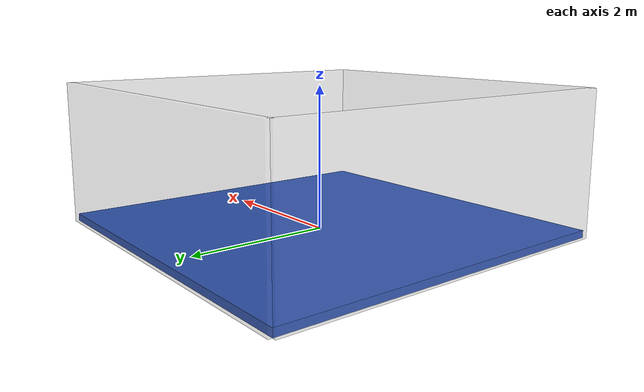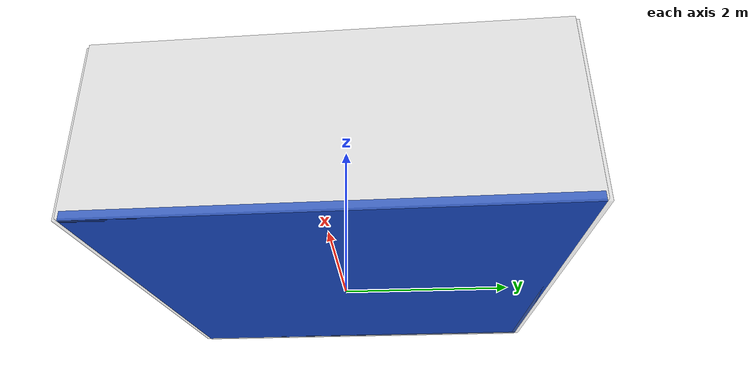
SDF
<?xml version="1.0" ?>
<sdf version="1.6">
  <model name="tanque_oco">
    <static>true</static>
    <link name="base_link">

      <collision name="piso_collision">
        <pose>0 0 0.05 0 0 0</pose>
        <geometry>
          <box><size>5.0 5.0 0.1</size></box>
        </geometry>
      </collision>
      <visual name="piso_visual">
        <pose>0 0 0.05 0 0 0</pose>
        <geometry>
          <box><size>5.0 5.0 0.1</size></box>
        </geometry>
        <material>
          <ambient>0.1 0.3 0.8 1.0</ambient>
          <diffuse>0.1 0.3 0.8 1.0</diffuse>
        </material>
      </visual>

      <collision name="parede_norte_collision">
        <pose>0 2.5 1.0 0 0 0</pose>
        <geometry>
          <box><size>5.0 0.1 2.0</size></box>
        </geometry>
      </collision>
      <visual name="parede_norte_visual">
        <pose>0 2.5 1.0 0 0 0</pose>
        <geometry>
          <box><size>5.0 0.1 2.0</size></box>
        </geometry>
        <material>
          <ambient>0.6 0.6 0.6 0.3</ambient>
          <diffuse>0.6 0.6 0.6 0.3</diffuse>
        </material>
      </visual>

      <collision name="parede_sul_collision">
        <pose>0 -2.5 1.0 0 0 0</pose>
        <geometry>
          <box><size>5.0 0.1 2.0</size></box>
        </geometry>
      </collision>
      <visual name="parede_sul_visual">
        <pose>0 -2.5 1.0 0 0 0</pose>
        <geometry>
          <box><size>5.0 0.1 2.0</size></box>
        </geometry>
        <material>
          <ambient>0.6 0.6 0.6 0.3</ambient>
          <diffuse>0.6 0.6 0.6 0.3</diffuse>
        </material>
      </visual>

      <collision name="parede_leste_collision">
        <pose>2.5 0 1.0 0 0 0</pose>
        <geometry>
          <box><size>0.1 5.0 2.0</size></box>
        </geometry>
      </collision>
      <visual name="parede_leste_visual">
        <pose>2.5 0 1.0 0 0 0</pose>
        <geometry>
          <box><size>0.1 5.0 2.0</size></box>
        </geometry>
        <material>
          <ambient>0.6 0.6 0.6 0.3</ambient>
          <diffuse>0.6 0.6 0.6 0.3</diffuse>
        </material>
      </visual>

      <collision name="parede_oeste_collision">
        <pose>-2.5 0 1.0 0 0 0</pose>
        <geometry>
          <box><size>0.1 5.0 2.0</size></box>
        </geometry>
      </collision>
      <visual name="parede_oeste_visual">
        <pose>-2.5 0 1.0 0 0 0</pose>
        <geometry>
          <box><size>0.1 5.0 2.0</size></box>
        </geometry>
        <material>
          <ambient>0.6 0.6 0.6 0.3</ambient>
          <diffuse>0.6 0.6 0.6 0.3</diffuse>
        </material>
      </visual>

    </link>
  </model>
</sdf>
